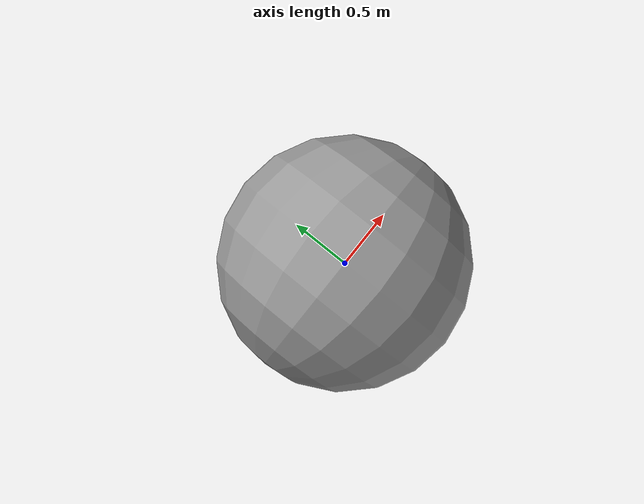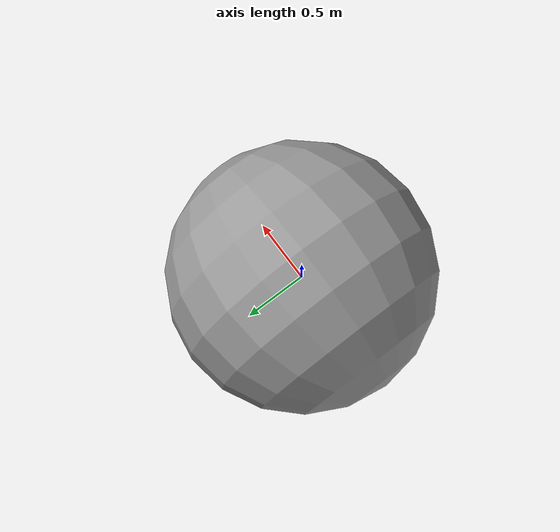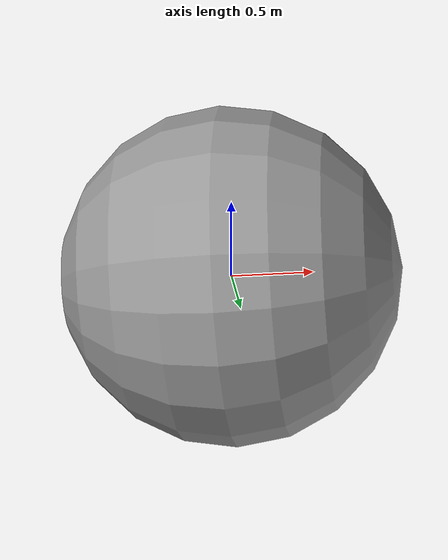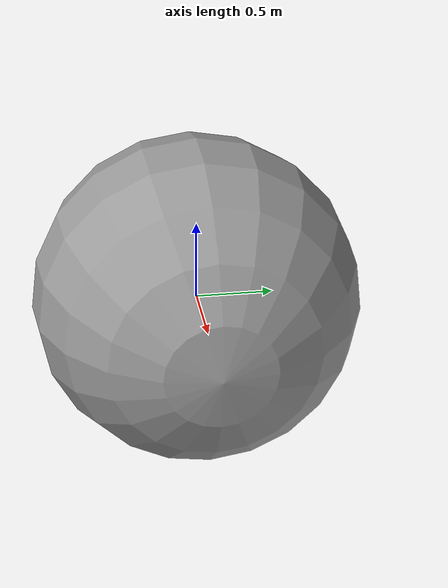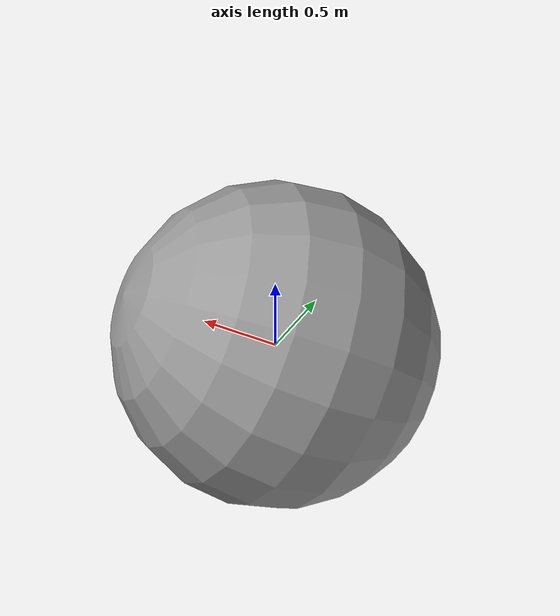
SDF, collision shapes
<?xml version="1.0" ?>
<sdf version='1.6'>
  <model name='uuv_hippocampus'>
    <static>0</static>
    <self_collide>false</self_collide>
    <link name='body'>

      <pose>0 0 0 0 0 0</pose>
      <inertial>
        <pose>0 0 0 0 0 0</pose>
        <mass>0.07</mass>
        <inertia>
          <ixx>0.0024</ixx>
          <ixy>0</ixy>
          <ixz>0</ixz>
          <iyy>0.010717</iyy>
          <iyz>0</iyz>
          <izz>0.010717</izz>
        </inertia>
      </inertial>
      <visual name='body_visual'>
        <pose>0 0 0 0 0 0</pose>
        <geometry>
          <mesh>
            <scale>1 1 1</scale>
            <uri>model://uuv_hippocampus/meshes/uuv_hippocampus.stl</uri>
          </mesh>
        </geometry>
        <material>
          <script>
            <name>Gazebo/Grey</name>
            <uri>file://media/materials/scripts/gazebo.material</uri>
          </script>
        </material>
      </visual>

        <collision name='body_collision'>
          <pose>0 0 0 0 1.570796 0</pose>
          <geometry>
            <sphere>
              <radius>1.04</radius>
            </sphere>
          </geometry>
        </collision>

      <velocity_decay/>
    </link>

<!-- CCW 1-->
<!-- rotor_0 link -->
    <link name='rotor_0'>
      <pose>-0.05 0.0481 0.0481 0 1.570796 0</pose>
      <inertial>
        <pose>0 0 0 0 -0 0</pose>
        <mass>0.005</mass>
        <inertia>
          <ixx>9.75e-07</ixx>
          <ixy>0</ixy>
          <ixz>0</ixz>
          <iyy>0.000273104</iyy>
          <iyz>0</iyz>
          <izz>0.000274004</izz>
        </inertia>
      </inertial>
      <collision name='rotor_0_collision'>
        <pose>0 0 0.02 0 0 0</pose>
        <geometry>
          <cylinder>
            <radius>0.02</radius>
            <length>0.06</length>
          </cylinder>
        </geometry>
        <surface>
          <contact>
            <ode/>
          </contact>
          <friction>
            <ode/>
          </friction>
        </surface>
      </collision>
      <visual name='rotor_0_visual'>
        <pose>0 0 0 0 -1.570796 0</pose>
        <geometry>
          <mesh>
            <scale>1 1 1</scale>
            <uri>model://uuv_hippocampus/meshes/uuv_hippocampus_prop.stl</uri>
          </mesh>
        </geometry>
        <material>
          <script>
            <name>Gazebo/Red</name>
            <uri>file://media/materials/scripts/gazebo.material</uri>
          </script>
        </material>
      </visual>
      <velocity_decay/>
    </link>

<!-- rotor_0 joint -->
    <joint name='rotor_0_joint' type='revolute'>
      <parent>body</parent>
      <child>rotor_0</child>
      <axis>
        <xyz>1 0 0</xyz>
        <limit>
          <lower>-1e+16</lower>
          <upper>1e+16</upper>
        </limit>
        <dynamics>
          <spring_reference>0</spring_reference>
          <spring_stiffness>0</spring_stiffness>
        </dynamics>
        <use_parent_model_frame>1</use_parent_model_frame>
      </axis>
    </joint>

<!-- CW 2 -->
<!-- rotor_1 link -->
    <link name='rotor_1'>
      <pose>-0.05 -0.0481 0.0481 0 1.570796 0</pose>
      <inertial>
        <pose>0 0 0 0 -0 0</pose>
        <mass>0.005</mass>
        <inertia>
          <ixx>9.75e-07</ixx>
          <ixy>0</ixy>
          <ixz>0</ixz>
          <iyy>0.000273104</iyy>
          <iyz>0</iyz>
          <izz>0.000274004</izz>
        </inertia>
      </inertial>
      <collision name='rotor_1_collision'>
        <pose>0 0 0.02 0 0 0</pose>
        <geometry>
          <cylinder>
            <radius>0.02</radius>
            <length>0.06</length>
          </cylinder>
        </geometry>
        <surface>
          <contact>
            <ode/>
          </contact>
          <friction>
            <ode/>
          </friction>
        </surface>
      </collision>
      <visual name='rotor_1_visual'>
        <pose>0 0 0 0 -1.570796 0</pose>
        <geometry>
          <mesh>
            <scale>1 1 1</scale>
            <uri>model://uuv_hippocampus/meshes/uuv_hippocampus_prop.stl</uri>
          </mesh>
        </geometry>
        <material>
          <script>
            <name>Gazebo/Green</name>
            <uri>file://media/materials/scripts/gazebo.material</uri>
          </script>
        </material>
      </visual>
      <velocity_decay/>
    </link>

<!-- rotor_1 joint -->
    <joint name='rotor_1_joint' type='revolute'>
    <child>rotor_1</child>
      <parent>body</parent>
      <axis>
        <xyz>1 0 0</xyz>
        <limit>
          <lower>-1e+16</lower>
          <upper>1e+16</upper>
        </limit>
        <dynamics>
          <spring_reference>0</spring_reference>
          <spring_stiffness>0</spring_stiffness>
        </dynamics>
        <use_parent_model_frame>1</use_parent_model_frame>
      </axis>
    </joint>

<!-- CCW 3 -->
<!-- rotor_2 link -->
    <link name='rotor_2'>
      <pose>-0.05 -0.0481 -0.0481 0 1.570796 0</pose>
      <inertial>
        <pose>0 0 0 0 -0 0</pose>
        <mass>0.005</mass>
        <inertia>
          <ixx>9.75e-07</ixx>
          <ixy>0</ixy>
          <ixz>0</ixz>
          <iyy>0.000273104</iyy>
          <iyz>0</iyz>
          <izz>0.000274004</izz>
        </inertia>
      </inertial>
      <collision name='rotor_2_collision'>
        <pose>0 0 0.02 0 0 0</pose>
        <geometry>
          <cylinder>
            <radius>0.02</radius>
            <length>0.06</length>
          </cylinder>
        </geometry>
        <surface>
          <contact>
            <ode/>
          </contact>
          <friction>
            <ode/>
          </friction>
        </surface>
      </collision>
      <visual name='rotor_2_visual'>
        <pose>0 0 0 0 -1.570796 0</pose>
        <geometry>
          <mesh>
            <scale>1 1 1</scale>
            <uri>model://uuv_hippocampus/meshes/uuv_hippocampus_prop.stl</uri>
          </mesh>
        </geometry>
        <material>
          <script>
            <name>Gazebo/Blue</name>
            <uri>file://media/materials/scripts/gazebo.material</uri>
          </script>
        </material>
      </visual>
      <velocity_decay/>
    </link>

<!-- rotor_2 joint -->
    <joint name='rotor_2_joint' type='revolute'>
      <child>rotor_2</child>
      <parent>body</parent>
      <axis>
        <xyz>1 0 0</xyz>
        <limit>
          <lower>-1e+16</lower>
          <upper>1e+16</upper>
        </limit>
        <dynamics>
          <spring_reference>0</spring_reference>
          <spring_stiffness>0</spring_stiffness>
        </dynamics>
        <use_parent_model_frame>1</use_parent_model_frame>
      </axis>
    </joint>

<!-- CW 4 -->
<!-- rotor_3 link -->
    <link name='rotor_3'>
      <pose>-0.05 0.0481 -0.0481 0 1.570796 0</pose>
      <inertial>
        <pose>0 0 0 0 -0 0</pose>
        <mass>0.005</mass>
        <inertia>
          <ixx>9.75e-07</ixx>
          <ixy>0</ixy>
          <ixz>0</ixz>
          <iyy>0.000273104</iyy>
          <iyz>0</iyz>
          <izz>0.000274004</izz>
        </inertia>
      </inertial>
      <collision name='rotor_3_collision'>
        <pose>0 0 0.02 0 0 0</pose>
        <geometry>
          <cylinder>
            <radius>0.02</radius>
            <length>0.06</length>
          </cylinder>
        </geometry>
        <surface>
          <contact>
            <ode/>
          </contact>
          <friction>
            <ode/>
          </friction>
        </surface>
      </collision>
      <visual name='rotor_3_visual'>
        <pose>0 0 0 0 -1.570796 0</pose>
        <geometry>
          <mesh>
            <scale>1 1 1</scale>
            <uri>model://uuv_hippocampus/meshes/uuv_hippocampus_prop.stl</uri>
          </mesh>
        </geometry>
        <material>
          <script>
            <name>Gazebo/Blue</name>
            <uri>file://media/materials/scripts/gazebo.material</uri>
          </script>
        </material>
      </visual>
      <velocity_decay/>
    </link>

<!-- rotor_3 joint -->
    <joint name='rotor_3_joint' type='revolute'>
      <child>rotor_3</child>
      <parent>body</parent>
      <axis>
        <xyz>1 0 0</xyz>
        <limit>
          <lower>-1e+16</lower>
          <upper>1e+16</upper>
        </limit>
        <dynamics>
          <spring_reference>0</spring_reference>
          <spring_stiffness>0</spring_stiffness>
        </dynamics>
        <use_parent_model_frame>1</use_parent_model_frame>
      </axis>
    </joint>

<!-- Plugins -->

      <plugin filename="gz-sim-multicopter-motor-model-system" name="gz::sim::systems::MulticopterMotorModel">
         <jointName>rotor_0_joint</jointName>
         <linkName>rotor_0</linkName>
         <turningDirection>ccw</turningDirection>
         <timeConstantUp>0.0125</timeConstantUp>
         <timeConstantDown>0.025</timeConstantDown>
         <maxRotVelocity>1000.0</maxRotVelocity>
         <motorConstant>8.54858e-06</motorConstant>
         <momentConstant>0.016</momentConstant>
         <commandSubTopic>command/motor_speed</commandSubTopic>
         <motorNumber>0</motorNumber>
         <rotorDragCoefficient>8.06428e-05</rotorDragCoefficient>
         <rollingMomentCoefficient>1e-06</rollingMomentCoefficient>
         <rotorVelocitySlowdownSim>10</rotorVelocitySlowdownSim>
         <motorType>velocity</motorType>
       </plugin>
       <plugin filename="gz-sim-multicopter-motor-model-system" name="gz::sim::systems::MulticopterMotorModel">
         <jointName>rotor_1_joint</jointName>
         <linkName>rotor_1</linkName>
         <turningDirection>ccw</turningDirection>
         <timeConstantUp>0.0125</timeConstantUp>
         <timeConstantDown>0.025</timeConstantDown>
         <maxRotVelocity>1000.0</maxRotVelocity>
         <motorConstant>8.54858e-06</motorConstant>
         <momentConstant>0.016</momentConstant>
         <commandSubTopic>command/motor_speed</commandSubTopic>
         <motorNumber>1</motorNumber>
         <rotorDragCoefficient>8.06428e-05</rotorDragCoefficient>
         <rollingMomentCoefficient>1e-06</rollingMomentCoefficient>
         <rotorVelocitySlowdownSim>10</rotorVelocitySlowdownSim>
         <motorType>velocity</motorType>
       </plugin>
       <plugin filename="gz-sim-multicopter-motor-model-system" name="gz::sim::systems::MulticopterMotorModel">
         <jointName>rotor_2_joint</jointName>
         <linkName>rotor_2</linkName>
         <turningDirection>cw</turningDirection>
         <timeConstantUp>0.0125</timeConstantUp>
         <timeConstantDown>0.025</timeConstantDown>
         <maxRotVelocity>1000.0</maxRotVelocity>
         <motorConstant>8.54858e-06</motorConstant>
         <momentConstant>0.016</momentConstant>
         <commandSubTopic>command/motor_speed</commandSubTopic>
         <motorNumber>2</motorNumber>
         <rotorDragCoefficient>8.06428e-05</rotorDragCoefficient>
         <rollingMomentCoefficient>1e-06</rollingMomentCoefficient>
         <rotorVelocitySlowdownSim>10</rotorVelocitySlowdownSim>
         <motorType>velocity</motorType>
       </plugin>
       <plugin filename="gz-sim-multicopter-motor-model-system" name="gz::sim::systems::MulticopterMotorModel">
         <jointName>rotor_3_joint</jointName>
         <linkName>rotor_3</linkName>
         <turningDirection>cw</turningDirection>
         <timeConstantUp>0.0125</timeConstantUp>
         <timeConstantDown>0.025</timeConstantDown>
         <maxRotVelocity>1000.0</maxRotVelocity>
         <motorConstant>8.54858e-06</motorConstant>
         <momentConstant>0.016</momentConstant>
         <commandSubTopic>command/motor_speed</commandSubTopic>
         <motorNumber>3</motorNumber>
         <rotorDragCoefficient>8.06428e-05</rotorDragCoefficient>
         <rollingMomentCoefficient>1e-06</rollingMomentCoefficient>
         <rotorVelocitySlowdownSim>10</rotorVelocitySlowdownSim>
         <motorType>velocity</motorType>
       </plugin>

  </model>
</sdf>
